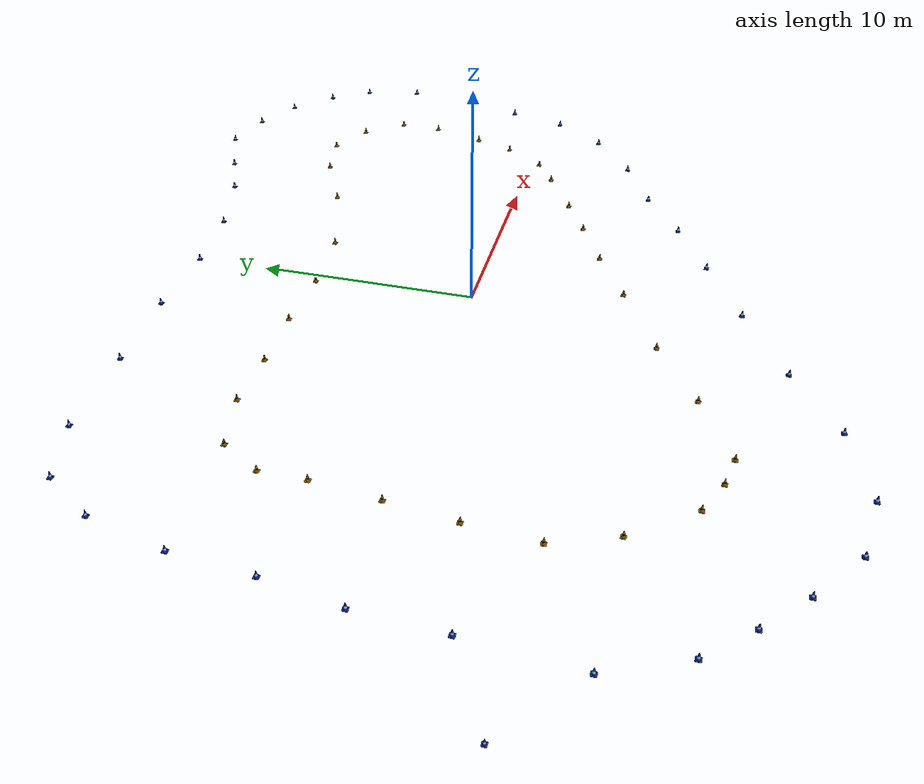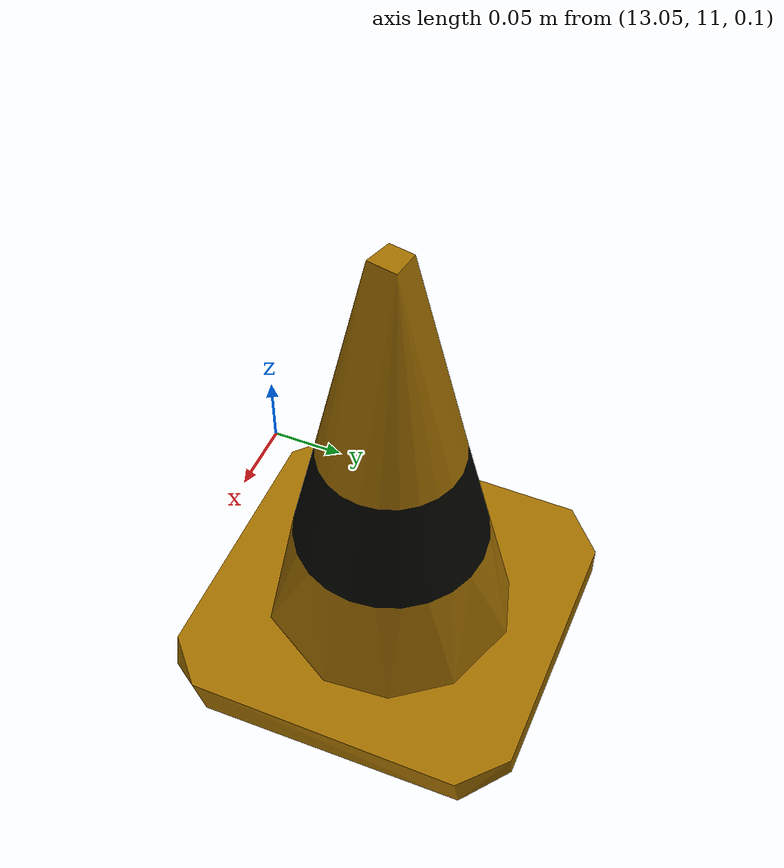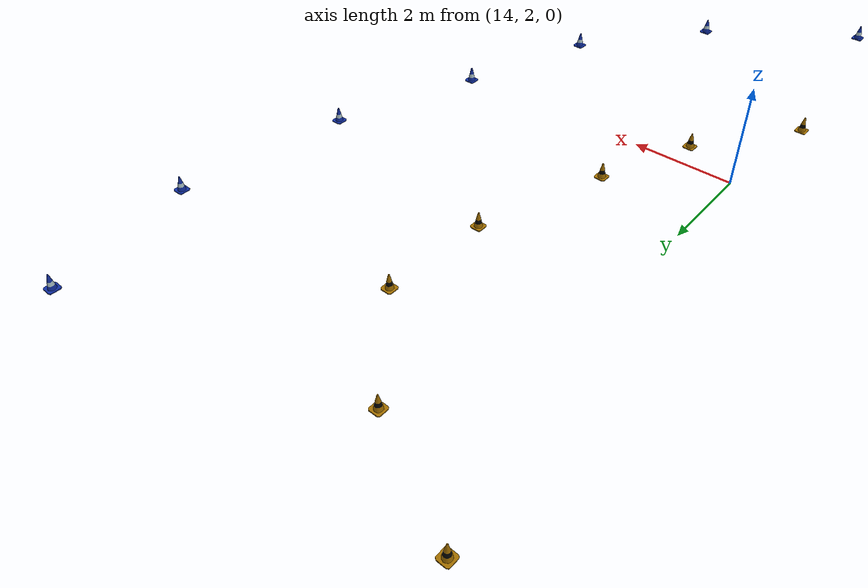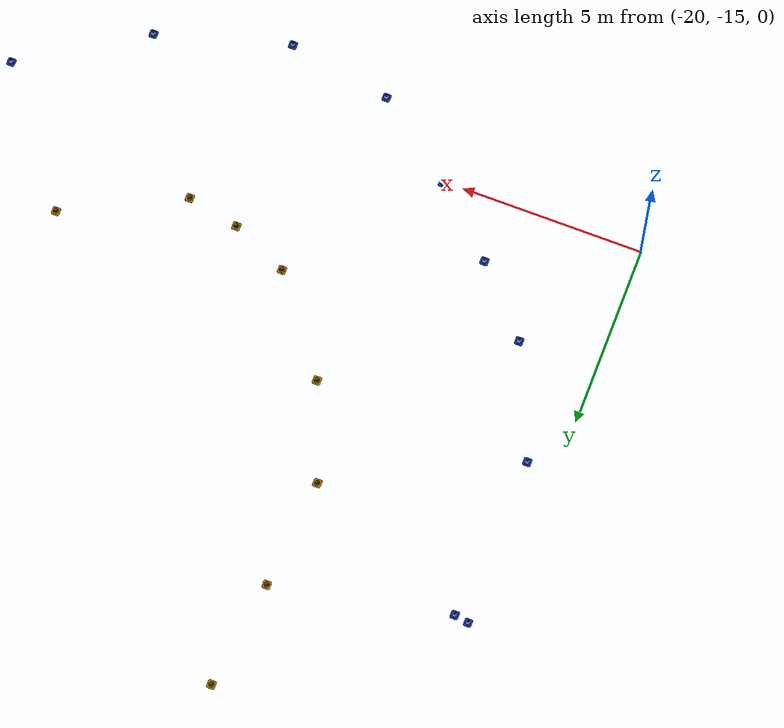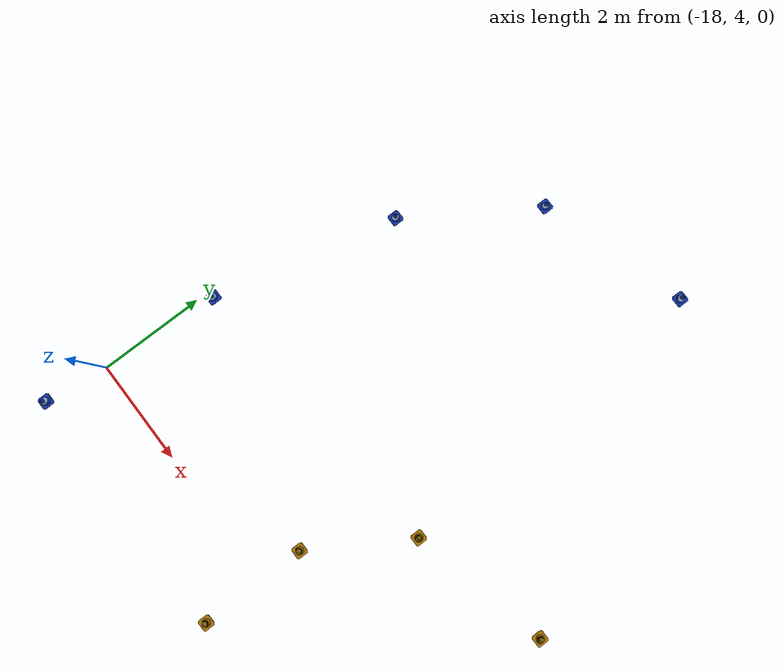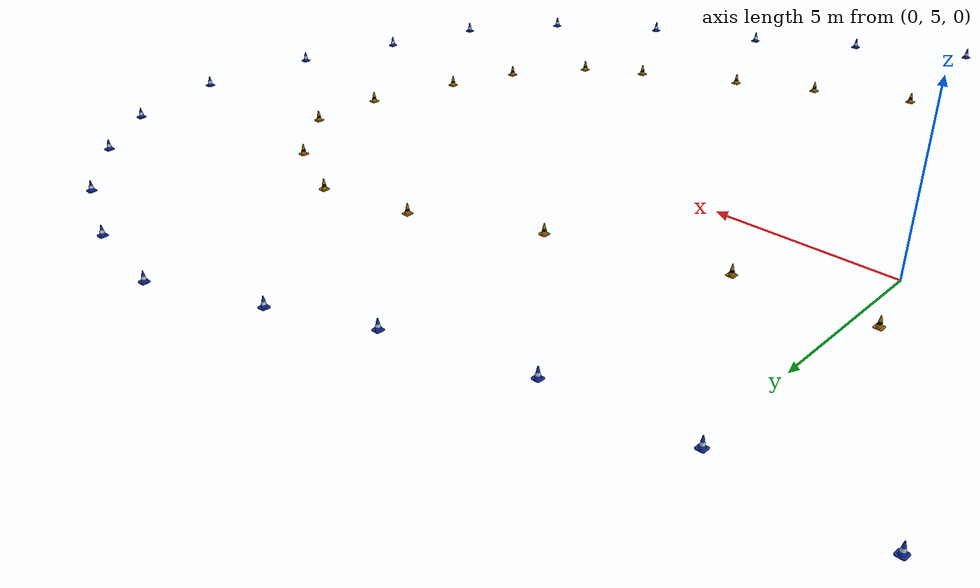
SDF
<?xml version='1.0'?>
<sdf version='1.6'>
  <model name='small_track'>
    <gazebo>
      <static>true</static>
    </gazebo>

    <link name='cone_blue_0'>
      <pose frame=''>-17.0129 9.72719 0.079001 0 -0 0</pose>
      <collision name="collision">
        <geometry>
          <mesh>
            <uri>model://eufs_description/meshes/cone_blue.dae</uri>
          </mesh>
        </geometry>
      </collision>
      <visual name="visual">
        <geometry>
          <mesh>
            <uri>model://eufs_description/meshes/cone_blue.dae</uri>
          </mesh>
        </geometry>
      </visual>
    </link>
    <link name='cone_blue_1'>
      <pose frame=''>-12.7541 12.8712 0.079001 0 -0 0</pose>
      <collision name="collision">
        <geometry>
          <mesh>
            <uri>model://eufs_description/meshes/cone_blue.dae</uri>
          </mesh>
        </geometry>
      </collision>
      <visual name="visual">
        <geometry>
          <mesh>
            <uri>model://eufs_description/meshes/cone_blue.dae</uri>
          </mesh>
        </geometry>
      </visual>
    </link>
    <link name='cone_yellow_2'>
      <pose frame=''>-12.2686 6.61784 0.070966 -0.001555 0.00019 -5.2e-05</pose>
      <collision name="collision">
        <geometry>
          <mesh>
            <uri>model://eufs_description/meshes/cone_yellow.dae</uri>
          </mesh>
        </geometry>
      </collision>
      <visual name="visual">
        <geometry>
          <mesh>
            <uri>model://eufs_description/meshes/cone_yellow.dae</uri>
          </mesh>
        </geometry>
      </visual>
    </link>
    <link name='cone_yellow_3'>
      <pose frame=''>-9.65737 7.2378 0.083534 0.001019 -0.000437 -0.000128</pose>
      <collision name="collision">
        <geometry>
          <mesh>
            <uri>model://eufs_description/meshes/cone_yellow.dae</uri>
          </mesh>
        </geometry>
      </collision>
      <visual name="visual">
        <geometry>
          <mesh>
            <uri>model://eufs_description/meshes/cone_yellow.dae</uri>
          </mesh>
        </geometry>
      </visual>
    </link>
    <link name='cone_blue_4'>
      <pose frame=''>-8.31569 13.0924 0.079001 0 -0 0</pose>
      <collision name="collision">
        <geometry>
          <mesh>
            <uri>model://eufs_description/meshes/cone_blue.dae</uri>
          </mesh>
        </geometry>
      </collision>
      <visual name="visual">
        <geometry>
          <mesh>
            <uri>model://eufs_description/meshes/cone_blue.dae</uri>
          </mesh>
        </geometry>
      </visual>
    </link>
    <link name='cone_yellow_5'>
      <pose frame=''>7.33516 9.03961 0.083556 0 -0 0</pose>
      <collision name="collision">
        <geometry>
          <mesh>
            <uri>model://eufs_description/meshes/cone_yellow.dae</uri>
          </mesh>
        </geometry>
      </collision>
      <visual name="visual">
        <geometry>
          <mesh>
            <uri>model://eufs_description/meshes/cone_yellow.dae</uri>
          </mesh>
        </geometry>
      </visual>
    </link>
    <link name='cone_blue_6'>
      <pose frame=''>9.62956 15.8379 0.084236 0 -0 0</pose>
      <collision name="collision">
        <geometry>
          <mesh>
            <uri>model://eufs_description/meshes/cone_blue.dae</uri>
          </mesh>
        </geometry>
      </collision>
      <visual name="visual">
        <geometry>
          <mesh>
            <uri>model://eufs_description/meshes/cone_blue.dae</uri>
          </mesh>
        </geometry>
      </visual>
    </link>
    <link name='cone_yellow_7'>
      <pose frame=''>10.548 10.5892 0.085274 0 -0 0</pose>
      <collision name="collision">
        <geometry>
          <mesh>
            <uri>model://eufs_description/meshes/cone_yellow.dae</uri>
          </mesh>
        </geometry>
      </collision>
      <visual name="visual">
        <geometry>
          <mesh>
            <uri>model://eufs_description/meshes/cone_yellow.dae</uri>
          </mesh>
        </geometry>
      </visual>
    </link>
    <link name='cone_yellow_8'>
      <pose frame=''>13.1479 11.1316 0.08476 0 -0 0</pose>
      <collision name="collision">
        <geometry>
          <mesh>
            <uri>model://eufs_description/meshes/cone_yellow.dae</uri>
          </mesh>
        </geometry>
      </collision>
      <visual name="visual">
        <geometry>
          <mesh>
            <uri>model://eufs_description/meshes/cone_yellow.dae</uri>
          </mesh>
        </geometry>
      </visual>
    </link>
    <link name='cone_blue_9'>
      <pose frame=''>12.492 17.0404 0.083705 0 -0 0</pose>
      <collision name="collision">
        <geometry>
          <mesh>
            <uri>model://eufs_description/meshes/cone_blue.dae</uri>
          </mesh>
        </geometry>
      </collision>
      <visual name="visual">
        <geometry>
          <mesh>
            <uri>model://eufs_description/meshes/cone_blue.dae</uri>
          </mesh>
        </geometry>
      </visual>
    </link>
    <link name='cone_blue_10'>
      <pose frame=''>15.1389 16.5025 0.082223 0 -0 0</pose>
      <collision name="collision">
        <geometry>
          <mesh>
            <uri>model://eufs_description/meshes/cone_blue.dae</uri>
          </mesh>
        </geometry>
      </collision>
      <visual name="visual">
        <geometry>
          <mesh>
            <uri>model://eufs_description/meshes/cone_blue.dae</uri>
          </mesh>
        </geometry>
      </visual>
    </link>
    <link name='cone_yellow_11'>
      <pose frame=''>15.2725 10.0791 0.08035 0 -0 0</pose>
      <collision name="collision">
        <geometry>
          <mesh>
            <uri>model://eufs_description/meshes/cone_yellow.dae</uri>
          </mesh>
        </geometry>
      </collision>
      <visual name="visual">
        <geometry>
          <mesh>
            <uri>model://eufs_description/meshes/cone_yellow.dae</uri>
          </mesh>
        </geometry>
      </visual>
    </link>
    <link name='cone_blue_12'>
      <pose frame=''>19.5034 13.6361 0.079669 0 -0 0</pose>
      <collision name="collision">
        <geometry>
          <mesh>
            <uri>model://eufs_description/meshes/cone_blue.dae</uri>
          </mesh>
        </geometry>
      </collision>
      <visual name="visual">
        <geometry>
          <mesh>
            <uri>model://eufs_description/meshes/cone_blue.dae</uri>
          </mesh>
        </geometry>
      </visual>
    </link>
    <link name='cone_blue_13'>
      <pose frame=''>20.8922 11.7012 0.056623 -0.001555 0.00019 -5.2e-05</pose>
      <collision name="collision">
        <geometry>
          <mesh>
            <uri>model://eufs_description/meshes/cone_blue.dae</uri>
          </mesh>
        </geometry>
      </collision>
      <visual name="visual">
        <geometry>
          <mesh>
            <uri>model://eufs_description/meshes/cone_blue.dae</uri>
          </mesh>
        </geometry>
      </visual>
    </link>
    <link name='cone_blue_14'>
      <pose frame=''>17.5221 15.3812 0.082077 -0.001555 0.00019 -5.2e-05</pose>
      <collision name="collision">
        <geometry>
          <mesh>
            <uri>model://eufs_description/meshes/cone_blue.dae</uri>
          </mesh>
        </geometry>
      </collision>
      <visual name="visual">
        <geometry>
          <mesh>
            <uri>model://eufs_description/meshes/cone_blue.dae</uri>
          </mesh>
        </geometry>
      </visual>
    </link>
    <link name='cone_yellow_15'>
      <pose frame=''>16.8037 8.23821 0.079433 0 -0 0</pose>
      <collision name="collision">
        <geometry>
          <mesh>
            <uri>model://eufs_description/meshes/cone_yellow.dae</uri>
          </mesh>
        </geometry>
      </collision>
      <visual name="visual">
        <geometry>
          <mesh>
            <uri>model://eufs_description/meshes/cone_yellow.dae</uri>
          </mesh>
        </geometry>
      </visual>
    </link>
    <link name='cone_blue_16'>
      <pose frame=''>21.4761 8.79574 0.079001 0 -0 0</pose>
      <collision name="collision">
        <geometry>
          <mesh>
            <uri>model://eufs_description/meshes/cone_blue.dae</uri>
          </mesh>
        </geometry>
      </collision>
      <visual name="visual">
        <geometry>
          <mesh>
            <uri>model://eufs_description/meshes/cone_blue.dae</uri>
          </mesh>
        </geometry>
      </visual>
    </link>
    <link name='cone_yellow_17'>
      <pose frame=''>-6.90273 7.20128 0.080073 0 -0 0</pose>
      <collision name="collision">
        <geometry>
          <mesh>
            <uri>model://eufs_description/meshes/cone_yellow.dae</uri>
          </mesh>
        </geometry>
      </collision>
      <visual name="visual">
        <geometry>
          <mesh>
            <uri>model://eufs_description/meshes/cone_yellow.dae</uri>
          </mesh>
        </geometry>
      </visual>
    </link>
    <link name='cone_blue_18'>
      <pose frame=''>20.9992 5.27662 0.079001 0 -0 0</pose>
      <collision name="collision">
        <geometry>
          <mesh>
            <uri>model://eufs_description/meshes/cone_blue.dae</uri>
          </mesh>
        </geometry>
      </collision>
      <visual name="visual">
        <geometry>
          <mesh>
            <uri>model://eufs_description/meshes/cone_blue.dae</uri>
          </mesh>
        </geometry>
      </visual>
    </link>
    <link name='cone_yellow_19'>
      <pose frame=''>16.7063 6.10772 0.079001 0 -0 0</pose>
      <collision name="collision">
        <geometry>
          <mesh>
            <uri>model://eufs_description/meshes/cone_yellow.dae</uri>
          </mesh>
        </geometry>
      </collision>
      <visual name="visual">
        <geometry>
          <mesh>
            <uri>model://eufs_description/meshes/cone_yellow.dae</uri>
          </mesh>
        </geometry>
      </visual>
    </link>
    <link name='cone_blue_20'>
      <pose frame=''>19.9925 2.24053 0.079001 0 -0 0</pose>
      <collision name="collision">
        <geometry>
          <mesh>
            <uri>model://eufs_description/meshes/cone_blue.dae</uri>
          </mesh>
        </geometry>
      </collision>
      <visual name="visual">
        <geometry>
          <mesh>
            <uri>model://eufs_description/meshes/cone_blue.dae</uri>
          </mesh>
        </geometry>
      </visual>
    </link>
    <link name='cone_yellow_21'>
      <pose frame=''>15.876 3.47906 0.079001 0 -0 0</pose>
      <collision name="collision">
        <geometry>
          <mesh>
            <uri>model://eufs_description/meshes/cone_yellow.dae</uri>
          </mesh>
        </geometry>
      </collision>
      <visual name="visual">
        <geometry>
          <mesh>
            <uri>model://eufs_description/meshes/cone_yellow.dae</uri>
          </mesh>
        </geometry>
      </visual>
    </link>
    <link name='cone_yellow_22'>
      <pose frame=''>15.106 1.5027 0.079001 0 -0 0</pose>
      <collision name="collision">
        <geometry>
          <mesh>
            <uri>model://eufs_description/meshes/cone_yellow.dae</uri>
          </mesh>
        </geometry>
      </collision>
      <visual name="visual">
        <geometry>
          <mesh>
            <uri>model://eufs_description/meshes/cone_yellow.dae</uri>
          </mesh>
        </geometry>
      </visual>
    </link>
    <link name='cone_blue_23'>
      <pose frame=''>19.0983 -0.671871 0.079001 0 -0 0</pose>
      <collision name="collision">
        <geometry>
          <mesh>
            <uri>model://eufs_description/meshes/cone_blue.dae</uri>
          </mesh>
        </geometry>
      </collision>
      <visual name="visual">
        <geometry>
          <mesh>
            <uri>model://eufs_description/meshes/cone_blue.dae</uri>
          </mesh>
        </geometry>
      </visual>
    </link>
    <link name='cone_yellow_24'>
      <pose frame=''>13.6765 -0.472612 0.079001 0 -0 0</pose>
      <collision name="collision">
        <geometry>
          <mesh>
            <uri>model://eufs_description/meshes/cone_yellow.dae</uri>
          </mesh>
        </geometry>
      </collision>
      <visual name="visual">
        <geometry>
          <mesh>
            <uri>model://eufs_description/meshes/cone_yellow.dae</uri>
          </mesh>
        </geometry>
      </visual>
    </link>
    <link name='cone_blue_25'>
      <pose frame=''>17.1824 -3.23994 0.079001 0 -0 0</pose>
      <collision name="collision">
        <geometry>
          <mesh>
            <uri>model://eufs_description/meshes/cone_blue.dae</uri>
          </mesh>
        </geometry>
      </collision>
      <visual name="visual">
        <geometry>
          <mesh>
            <uri>model://eufs_description/meshes/cone_blue.dae</uri>
          </mesh>
        </geometry>
      </visual>
    </link>
    <link name='cone_yellow_26'>
      <pose frame=''>9.41953 -2.84739 0.079001 0 -0 0</pose>
      <collision name="collision">
        <geometry>
          <mesh>
            <uri>model://eufs_description/meshes/cone_yellow.dae</uri>
          </mesh>
        </geometry>
      </collision>
      <visual name="visual">
        <geometry>
          <mesh>
            <uri>model://eufs_description/meshes/cone_yellow.dae</uri>
          </mesh>
        </geometry>
      </visual>
    </link>
    <link name='cone_blue_27'>
      <pose frame=''>11.114 -6.74408 0.079001 0 -0 0</pose>
      <collision name="collision">
        <geometry>
          <mesh>
            <uri>model://eufs_description/meshes/cone_blue.dae</uri>
          </mesh>
        </geometry>
      </collision>
      <visual name="visual">
        <geometry>
          <mesh>
            <uri>model://eufs_description/meshes/cone_blue.dae</uri>
          </mesh>
        </geometry>
      </visual>
    </link>
    <link name='cone_blue_28'>
      <pose frame=''>-4.06552 13.3637 0.079001 0 -0 0</pose>
      <collision name="collision">
        <geometry>
          <mesh>
            <uri>model://eufs_description/meshes/cone_blue.dae</uri>
          </mesh>
        </geometry>
      </collision>
      <visual name="visual">
        <geometry>
          <mesh>
            <uri>model://eufs_description/meshes/cone_blue.dae</uri>
          </mesh>
        </geometry>
      </visual>
    </link>
    <link name='cone_yellow_29'>
      <pose frame=''>12.0732 -1.43122 0.079001 0 -0 0</pose>
      <collision name="collision">
        <geometry>
          <mesh>
            <uri>model://eufs_description/meshes/cone_yellow.dae</uri>
          </mesh>
        </geometry>
      </collision>
      <visual name="visual">
        <geometry>
          <mesh>
            <uri>model://eufs_description/meshes/cone_yellow.dae</uri>
          </mesh>
        </geometry>
      </visual>
    </link>
    <link name='cone_blue_30'>
      <pose frame=''>14.2831 -5.26437 0.079001 0 -0 0</pose>
      <collision name="collision">
        <geometry>
          <mesh>
            <uri>model://eufs_description/meshes/cone_blue.dae</uri>
          </mesh>
        </geometry>
      </collision>
      <visual name="visual">
        <geometry>
          <mesh>
            <uri>model://eufs_description/meshes/cone_blue.dae</uri>
          </mesh>
        </geometry>
      </visual>
    </link>
    <link name='cone_yellow_31'>
      <pose frame=''>7.26282 -3.9408 0.079001 0 -0 0</pose>
      <collision name="collision">
        <geometry>
          <mesh>
            <uri>model://eufs_description/meshes/cone_yellow.dae</uri>
          </mesh>
        </geometry>
      </collision>
      <visual name="visual">
        <geometry>
          <mesh>
            <uri>model://eufs_description/meshes/cone_yellow.dae</uri>
          </mesh>
        </geometry>
      </visual>
    </link>
    <link name='cone_blue_32'>
      <pose frame=''>8.25363 -8.53889 0.079001 0 -0 0</pose>
      <collision name="collision">
        <geometry>
          <mesh>
            <uri>model://eufs_description/meshes/cone_blue.dae</uri>
          </mesh>
        </geometry>
      </collision>
      <visual name="visual">
        <geometry>
          <mesh>
            <uri>model://eufs_description/meshes/cone_blue.dae</uri>
          </mesh>
        </geometry>
      </visual>
    </link>
    <link name='cone_yellow_33'>
      <pose frame=''>4.65159 -5.15509 0.079001 0 -0 0</pose>
      <collision name="collision">
        <geometry>
          <mesh>
            <uri>model://eufs_description/meshes/cone_yellow.dae</uri>
          </mesh>
        </geometry>
      </collision>
      <visual name="visual">
        <geometry>
          <mesh>
            <uri>model://eufs_description/meshes/cone_yellow.dae</uri>
          </mesh>
        </geometry>
      </visual>
    </link>
    <link name='cone_blue_34'>
      <pose frame=''>5.06185 -10.1551 0.079001 0 -0 0</pose>
      <collision name="collision">
        <geometry>
          <mesh>
            <uri>model://eufs_description/meshes/cone_blue.dae</uri>
          </mesh>
        </geometry>
      </collision>
      <visual name="visual">
        <geometry>
          <mesh>
            <uri>model://eufs_description/meshes/cone_blue.dae</uri>
          </mesh>
        </geometry>
      </visual>
    </link>
    <link name='cone_yellow_35'>
      <pose frame=''>1.78774 -6.66723 0.079001 0 -0 0</pose>
      <collision name="collision">
        <geometry>
          <mesh>
            <uri>model://eufs_description/meshes/cone_yellow.dae</uri>
          </mesh>
        </geometry>
      </collision>
      <visual name="visual">
        <geometry>
          <mesh>
            <uri>model://eufs_description/meshes/cone_yellow.dae</uri>
          </mesh>
        </geometry>
      </visual>
    </link>
    <link name='cone_blue_36'>
      <pose frame=''>1.42086 -11.9634 0.079001 0 -0 0</pose>
      <collision name="collision">
        <geometry>
          <mesh>
            <uri>model://eufs_description/meshes/cone_blue.dae</uri>
          </mesh>
        </geometry>
      </collision>
      <visual name="visual">
        <geometry>
          <mesh>
            <uri>model://eufs_description/meshes/cone_blue.dae</uri>
          </mesh>
        </geometry>
      </visual>
    </link>
    <link name='cone_yellow_37'>
      <pose frame=''>-1.97969 -8.56329 0.079001 0 -0 0</pose>
      <collision name="collision">
        <geometry>
          <mesh>
            <uri>model://eufs_description/meshes/cone_yellow.dae</uri>
          </mesh>
        </geometry>
      </collision>
      <visual name="visual">
        <geometry>
          <mesh>
            <uri>model://eufs_description/meshes/cone_yellow.dae</uri>
          </mesh>
        </geometry>
      </visual>
    </link>
    <link name='cone_blue_38'>
      <pose frame=''>-2.4975 -14.0305 0.079001 0 -0 0</pose>
      <collision name="collision">
        <geometry>
          <mesh>
            <uri>model://eufs_description/meshes/cone_blue.dae</uri>
          </mesh>
        </geometry>
      </collision>
      <visual name="visual">
        <geometry>
          <mesh>
            <uri>model://eufs_description/meshes/cone_blue.dae</uri>
          </mesh>
        </geometry>
      </visual>
    </link>
    <link name='cone_yellow_39'>
      <pose frame=''>-3.80615 7.33616 0.079001 0 -0 0</pose>
      <collision name="collision">
        <geometry>
          <mesh>
            <uri>model://eufs_description/meshes/cone_yellow.dae</uri>
          </mesh>
        </geometry>
      </collision>
      <visual name="visual">
        <geometry>
          <mesh>
            <uri>model://eufs_description/meshes/cone_yellow.dae</uri>
          </mesh>
        </geometry>
      </visual>
    </link>
    <link name='cone_yellow_40'>
      <pose frame=''>-5.18123 -10.5555 0.079001 0 -0 0</pose>
      <collision name="collision">
        <geometry>
          <mesh>
            <uri>model://eufs_description/meshes/cone_yellow.dae</uri>
          </mesh>
        </geometry>
      </collision>
      <visual name="visual">
        <geometry>
          <mesh>
            <uri>model://eufs_description/meshes/cone_yellow.dae</uri>
          </mesh>
        </geometry>
      </visual>
    </link>
    <link name='cone_blue_41'>
      <pose frame=''>-5.74864 -16.1217 0.079001 0 -0 0</pose>
      <collision name="collision">
        <geometry>
          <mesh>
            <uri>model://eufs_description/meshes/cone_blue.dae</uri>
          </mesh>
        </geometry>
      </collision>
      <visual name="visual">
        <geometry>
          <mesh>
            <uri>model://eufs_description/meshes/cone_blue.dae</uri>
          </mesh>
        </geometry>
      </visual>
    </link>
    <link name='cone_yellow_42'>
      <pose frame=''>-8.34841 -12.1551 0.079001 0 -0 0</pose>
      <collision name="collision">
        <geometry>
          <mesh>
            <uri>model://eufs_description/meshes/cone_yellow.dae</uri>
          </mesh>
        </geometry>
      </collision>
      <visual name="visual">
        <geometry>
          <mesh>
            <uri>model://eufs_description/meshes/cone_yellow.dae</uri>
          </mesh>
        </geometry>
      </visual>
    </link>
    <link name='cone_blue_43'>
      <pose frame=''>-9.34841 -17.1551 0.079001 0 -0 0</pose>
      <collision name="collision">
        <geometry>
          <mesh>
            <uri>model://eufs_description/meshes/cone_blue.dae</uri>
          </mesh>
        </geometry>
      </collision>
      <visual name="visual">
        <geometry>
          <mesh>
            <uri>model://eufs_description/meshes/cone_blue.dae</uri>
          </mesh>
        </geometry>
      </visual>
    </link>
    <link name='cone_yellow_44'>
      <pose frame=''>-9.78487 -11.8592 0.079001 0 -0 0</pose>
      <collision name="collision">
        <geometry>
          <mesh>
            <uri>model://eufs_description/meshes/cone_yellow.dae</uri>
          </mesh>
        </geometry>
      </collision>
      <visual name="visual">
        <geometry>
          <mesh>
            <uri>model://eufs_description/meshes/cone_yellow.dae</uri>
          </mesh>
        </geometry>
      </visual>
    </link>
    <link name='cone_blue_45'>
      <pose frame=''>-12.2114 -16.6459 0.079001 0 -0 0</pose>
      <collision name="collision">
        <geometry>
          <mesh>
            <uri>model://eufs_description/meshes/cone_blue.dae</uri>
          </mesh>
        </geometry>
      </collision>
      <visual name="visual">
        <geometry>
          <mesh>
            <uri>model://eufs_description/meshes/cone_blue.dae</uri>
          </mesh>
        </geometry>
      </visual>
    </link>
    <link name='cone_yellow_46'>
      <pose frame=''>-11.3484 -11.1551 0.079001 0 -0 0</pose>
      <collision name="collision">
        <geometry>
          <mesh>
            <uri>model://eufs_description/meshes/cone_yellow.dae</uri>
          </mesh>
        </geometry>
      </collision>
      <visual name="visual">
        <geometry>
          <mesh>
            <uri>model://eufs_description/meshes/cone_yellow.dae</uri>
          </mesh>
        </geometry>
      </visual>
    </link>
    <link name='cone_blue_47'>
      <pose frame=''>-14.4625 -14.9249 0.079001 0 -0 0</pose>
      <collision name="collision">
        <geometry>
          <mesh>
            <uri>model://eufs_description/meshes/cone_blue.dae</uri>
          </mesh>
        </geometry>
      </collision>
      <visual name="visual">
        <geometry>
          <mesh>
            <uri>model://eufs_description/meshes/cone_blue.dae</uri>
          </mesh>
        </geometry>
      </visual>
    </link>
    <link name='cone_blue_48'>
      <pose frame=''>-16.2427 -13.276 0.079001 0 -0 0</pose>
      <collision name="collision">
        <geometry>
          <mesh>
            <uri>model://eufs_description/meshes/cone_blue.dae</uri>
          </mesh>
        </geometry>
      </collision>
      <visual name="visual">
        <geometry>
          <mesh>
            <uri>model://eufs_description/meshes/cone_blue.dae</uri>
          </mesh>
        </geometry>
      </visual>
    </link>
    <link name='cone_yellow_49'>
      <pose frame=''>-13.2946 -8.64709 0.079001 0 -0 0</pose>
      <collision name="collision">
        <geometry>
          <mesh>
            <uri>model://eufs_description/meshes/cone_yellow.dae</uri>
          </mesh>
        </geometry>
      </collision>
      <visual name="visual">
        <geometry>
          <mesh>
            <uri>model://eufs_description/meshes/cone_yellow.dae</uri>
          </mesh>
        </geometry>
      </visual>
    </link>
    <link name='cone_blue_50'>
      <pose frame=''>-0.131239 13.3125 0.079001 0 -0 0</pose>
      <collision name="collision">
        <geometry>
          <mesh>
            <uri>model://eufs_description/meshes/cone_blue.dae</uri>
          </mesh>
        </geometry>
      </collision>
      <visual name="visual">
        <geometry>
          <mesh>
            <uri>model://eufs_description/meshes/cone_blue.dae</uri>
          </mesh>
        </geometry>
      </visual>
    </link>
    <link name='cone_blue_51'>
      <pose frame=''>-17.8615 -11.5349 0.079001 0 -0 0</pose>
      <collision name="collision">
        <geometry>
          <mesh>
            <uri>model://eufs_description/meshes/cone_blue.dae</uri>
          </mesh>
        </geometry>
      </collision>
      <visual name="visual">
        <geometry>
          <mesh>
            <uri>model://eufs_description/meshes/cone_blue.dae</uri>
          </mesh>
        </geometry>
      </visual>
    </link>
    <link name='cone_yellow_52'>
      <pose frame=''>-14.2998 -6.05581 0.079001 0 -0 0</pose>
      <collision name="collision">
        <geometry>
          <mesh>
            <uri>model://eufs_description/meshes/cone_yellow.dae</uri>
          </mesh>
        </geometry>
      </collision>
      <visual name="visual">
        <geometry>
          <mesh>
            <uri>model://eufs_description/meshes/cone_yellow.dae</uri>
          </mesh>
        </geometry>
      </visual>
    </link>
    <link name='cone_blue_53'>
      <pose frame=''>-19.1945 -8.52656 0.079001 0 -0 0</pose>
      <collision name="collision">
        <geometry>
          <mesh>
            <uri>model://eufs_description/meshes/cone_blue.dae</uri>
          </mesh>
        </geometry>
      </collision>
      <visual name="visual">
        <geometry>
          <mesh>
            <uri>model://eufs_description/meshes/cone_blue.dae</uri>
          </mesh>
        </geometry>
      </visual>
    </link>
    <link name='cone_blue_54'>
      <pose frame=''>-18.9382 -5.15509 -4.97705 0 -0 0</pose>
      <collision name="collision">
        <geometry>
          <mesh>
            <uri>model://eufs_description/meshes/cone_blue.dae</uri>
          </mesh>
        </geometry>
      </collision>
      <visual name="visual">
        <geometry>
          <mesh>
            <uri>model://eufs_description/meshes/cone_blue.dae</uri>
          </mesh>
        </geometry>
      </visual>
    </link>
    <link name='cone_yellow_55'>
      <pose frame=''>-14.0528 -3.05427 0.079001 0 -0 0</pose>
      <collision name="collision">
        <geometry>
          <mesh>
            <uri>model://eufs_description/meshes/cone_yellow.dae</uri>
          </mesh>
        </geometry>
      </collision>
      <visual name="visual">
        <geometry>
          <mesh>
            <uri>model://eufs_description/meshes/cone_yellow.dae</uri>
          </mesh>
        </geometry>
      </visual>
    </link>
    <link name='cone_blue_56'>
      <pose frame=''>-18.8625 -4.02997 0.079001 0 -0 0</pose>
      <collision name="collision">
        <geometry>
          <mesh>
            <uri>model://eufs_description/meshes/cone_blue.dae</uri>
          </mesh>
        </geometry>
      </collision>
      <visual name="visual">
        <geometry>
          <mesh>
            <uri>model://eufs_description/meshes/cone_blue.dae</uri>
          </mesh>
        </geometry>
      </visual>
    </link>
    <link name='cone_blue_57'>
      <pose frame=''>-18.6872 -0.45783 0.079001 0 -0 0</pose>
      <collision name="collision">
        <geometry>
          <mesh>
            <uri>model://eufs_description/meshes/cone_blue.dae</uri>
          </mesh>
        </geometry>
      </collision>
      <visual name="visual">
        <geometry>
          <mesh>
            <uri>model://eufs_description/meshes/cone_blue.dae</uri>
          </mesh>
        </geometry>
      </visual>
    </link>
    <link name='cone_yellow_58'>
      <pose frame=''>-13.6807 -0.101053 0.079001 0 -0 0</pose>
      <collision name="collision">
        <geometry>
          <mesh>
            <uri>model://eufs_description/meshes/cone_yellow.dae</uri>
          </mesh>
        </geometry>
      </collision>
      <visual name="visual">
        <geometry>
          <mesh>
            <uri>model://eufs_description/meshes/cone_yellow.dae</uri>
          </mesh>
        </geometry>
      </visual>
    </link>
    <link name='cone_blue_59'>
      <pose frame=''>-18.1384 2.83132 0.079001 0 -0 0</pose>
      <collision name="collision">
        <geometry>
          <mesh>
            <uri>model://eufs_description/meshes/cone_blue.dae</uri>
          </mesh>
        </geometry>
      </collision>
      <visual name="visual">
        <geometry>
          <mesh>
            <uri>model://eufs_description/meshes/cone_blue.dae</uri>
          </mesh>
        </geometry>
      </visual>
    </link>
    <link name='cone_yellow_60'>
      <pose frame=''>-13.3484 2.84491 0.079001 0 -0 0</pose>
      <collision name="collision">
        <geometry>
          <mesh>
            <uri>model://eufs_description/meshes/cone_yellow.dae</uri>
          </mesh>
        </geometry>
      </collision>
      <visual name="visual">
        <geometry>
          <mesh>
            <uri>model://eufs_description/meshes/cone_yellow.dae</uri>
          </mesh>
        </geometry>
      </visual>
    </link>
    <link name='cone_yellow_61'>
      <pose frame=''>-0.595997 7.27843 0.079001 0 -0 0</pose>
      <collision name="collision">
        <geometry>
          <mesh>
            <uri>model://eufs_description/meshes/cone_yellow.dae</uri>
          </mesh>
        </geometry>
      </collision>
      <visual name="visual">
        <geometry>
          <mesh>
            <uri>model://eufs_description/meshes/cone_yellow.dae</uri>
          </mesh>
        </geometry>
      </visual>
    </link>
    <link name='cone_blue_62'>
      <pose frame=''>-17.8432 6.27091 0.079001 0 -0 0</pose>
      <collision name="collision">
        <geometry>
          <mesh>
            <uri>model://eufs_description/meshes/cone_blue.dae</uri>
          </mesh>
        </geometry>
      </collision>
      <visual name="visual">
        <geometry>
          <mesh>
            <uri>model://eufs_description/meshes/cone_blue.dae</uri>
          </mesh>
        </geometry>
      </visual>
    </link>
    <link name='cone_yellow_63'>
      <pose frame=''>-13.3484 4.84491 0.079001 0 -0 0</pose>
      <collision name="collision">
        <geometry>
          <mesh>
            <uri>model://eufs_description/meshes/cone_yellow.dae</uri>
          </mesh>
        </geometry>
      </collision>
      <visual name="visual">
        <geometry>
          <mesh>
            <uri>model://eufs_description/meshes/cone_yellow.dae</uri>
          </mesh>
        </geometry>
      </visual>
    </link>
    <link name='cone_blue_64'>
      <pose frame=''>-15.5443 12.0063 0.063291 -0.001555 0.00019 -5.2e-05</pose>
      <collision name="collision">
        <geometry>
          <mesh>
            <uri>model://eufs_description/meshes/cone_blue.dae</uri>
          </mesh>
        </geometry>
      </collision>
      <visual name="visual">
        <geometry>
          <mesh>
            <uri>model://eufs_description/meshes/cone_blue.dae</uri>
          </mesh>
        </geometry>
      </visual>
    </link>
    <link name='cone_blue_65'>
      <pose frame=''>3.50416 13.7245 0.080395 0 -0 0</pose>
      <collision name="collision">
        <geometry>
          <mesh>
            <uri>model://eufs_description/meshes/cone_blue.dae</uri>
          </mesh>
        </geometry>
      </collision>
      <visual name="visual">
        <geometry>
          <mesh>
            <uri>model://eufs_description/meshes/cone_blue.dae</uri>
          </mesh>
        </geometry>
      </visual>
    </link>
    <link name='cone_yellow_66'>
      <pose frame=''>2.90884 7.57594 0.07997 0 -0 0</pose>
      <collision name="collision">
        <geometry>
          <mesh>
            <uri>model://eufs_description/meshes/cone_yellow.dae</uri>
          </mesh>
        </geometry>
      </collision>
      <visual name="visual">
        <geometry>
          <mesh>
            <uri>model://eufs_description/meshes/cone_yellow.dae</uri>
          </mesh>
        </geometry>
      </visual>
    </link>
    <link name='cone_blue_67'>
      <pose frame=''>7.13676 14.727 0.083062 0 -0 0</pose>
      <collision name="collision">
        <geometry>
          <mesh>
            <uri>model://eufs_description/meshes/cone_blue.dae</uri>
          </mesh>
        </geometry>
      </collision>
      <visual name="visual">
        <geometry>
          <mesh>
            <uri>model://eufs_description/meshes/cone_blue.dae</uri>
          </mesh>
        </geometry>
      </visual>
    </link>
    <static>0</static>
    <allow_auto_disable>1</allow_auto_disable>
  </model>
</sdf>
